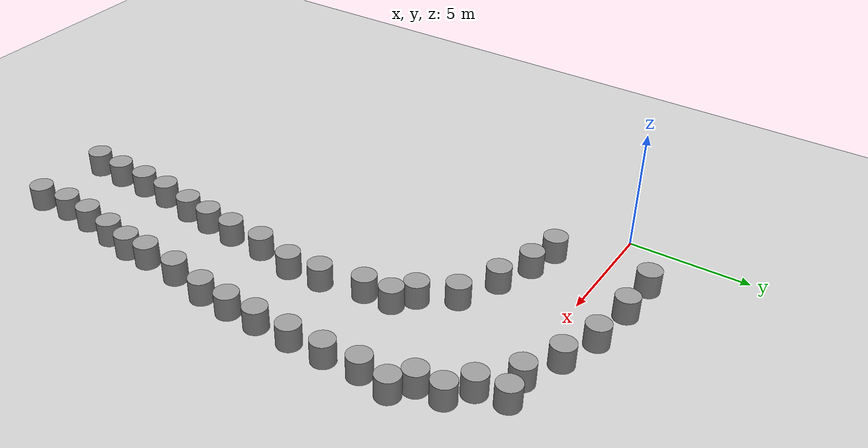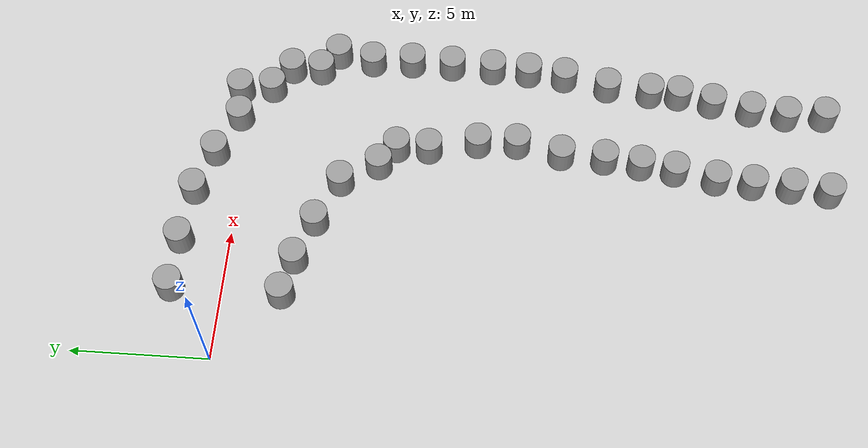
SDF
<sdf version="1.6">
 <world name="default">
  <light name="sun" type="directional">
   <pose>0 0 10 0 -0 0</pose>
   <diffuse>0.8 0.8 0.8 1</diffuse>
   <specular>0.1 0.1 0.1 1</specular>
   <attenuation>
    <range>1000</range>
    <constant>0.9</constant>
    <linear>0.01</linear>
    <quadratic>0.001</quadratic>
   </attenuation>
   <direction>-0.5 0.5 -1</direction>
  </light>
  <model name="ground_plane">
   <static>1</static>
   <link name="link">
    <collision name="collision">
     <geometry><plane><normal>0 0 1</normal><size>100 100</size></plane></geometry>
     <surface><friction><ode><mu>100</mu><mu2>50</mu2></ode></friction></surface>
    </collision>
    <visual name="visual">
     <cast_shadows>0</cast_shadows>
     <geometry><plane><normal>0 0 1</normal><size>100 100</size></plane></geometry>
     <material>
      <script><uri>file://media/materials/scripts/gazebo.material</uri><name>Gazebo/Grey</name></script>
     </material>
    </visual>
   </link>
  </model>
  <gravity>0 0 -9.8</gravity>
  <magnetic_field>6e-06 2.3e-05 -4.2e-05</magnetic_field>
  <atmosphere type="adiabatic"/>
  <physics name="default_physics" default="0" type="ode">
   <max_step_size>0.001</max_step_size>
   <real_time_factor>1</real_time_factor>
   <real_time_update_rate>1000</real_time_update_rate>
  </physics>
  <scene><ambient>0.4 0.4 0.4 1</ambient><background>0.7 0.7 0.7 1</background><shadows>1</shadows></scene>
  <spherical_coordinates>
   <surface_model>EARTH_WGS84</surface_model>
   <latitude_deg>0</latitude_deg>
   <longitude_deg>0</longitude_deg>
   <elevation>0</elevation>
   <heading_deg>0</heading_deg>
  </spherical_coordinates>
  <model name="unit_cylinder_0">
   <pose>2.57729 -2.17887 0.499998 3e-06 4e-06 -0</pose>
   <link name="link">
    <inertial>
     <mass>1</mass>
     <inertia><ixx>0.145833</ixx><ixy>0</ixy><ixz>0</ixz><iyy>0.145833</iyy><iyz>0</iyz><izz>0.125</izz></inertia>
    </inertial>
    <collision name="collision">
     <geometry><cylinder><radius>0.5</radius><length>1</length></cylinder></geometry>
    </collision>
    <visual name="visual">
     <geometry><cylinder><radius>0.5</radius><length>1</length></cylinder></geometry>
     <material>
      <script><name>Gazebo/Grey</name><uri>file://media/materials/scripts/gazebo.material</uri></script>
     </material>
    </visual>
   </link>
  </model>
  <model name="unit_cylinder_0_clone">
   <pose>2.61381 1.82032 0.499998 3e-06 4e-06 -0</pose>
   <link name="link">
    <inertial>
     <mass>1</mass>
     <inertia><ixx>0.145833</ixx><ixy>0</ixy><ixz>0</ixz><iyy>0.145833</iyy><iyz>0</iyz><izz>0.125</izz></inertia>
    </inertial>
    <collision name="collision">
     <geometry><cylinder><radius>0.5</radius><length>1</length></cylinder></geometry>
    </collision>
    <visual name="visual">
     <geometry><cylinder><radius>0.5</radius><length>1</length></cylinder></geometry>
     <material>
      <script><name>Gazebo/Grey</name><uri>file://media/materials/scripts/gazebo.material</uri></script>
     </material>
    </visual>
   </link>
  </model>
  <model name="unit_cylinder_0_clone_0">
   <pose>4.55328 1.78364 0.499994 -4e-06 -3e-06 -0</pose>
   <link name="link">
    <inertial>
     <mass>1</mass>
     <inertia><ixx>0.145833</ixx><ixy>0</ixy><ixz>0</ixz><iyy>0.145833</iyy><iyz>0</iyz><izz>0.125</izz></inertia>
    </inertial>
    <collision name="collision">
     <geometry><cylinder><radius>0.5</radius><length>1</length></cylinder></geometry>
    </collision>
    <visual name="visual">
     <geometry><cylinder><radius>0.5</radius><length>1</length></cylinder></geometry>
     <material>
      <script><name>Gazebo/Grey</name><uri>file://media/materials/scripts/gazebo.material</uri></script>
     </material>
    </visual>
   </link>
  </model>
  <model name="unit_cylinder_0_clone_1">
   <pose>6.62623 1.5799 0.499994 -4e-06 -3e-06 -0</pose>
   <link name="link">
    <inertial>
     <mass>1</mass>
     <inertia><ixx>0.145833</ixx><ixy>0</ixy><ixz>0</ixz><iyy>0.145833</iyy><iyz>0</iyz><izz>0.125</izz></inertia>
    </inertial>
    <collision name="collision">
     <geometry><cylinder><radius>0.5</radius><length>1</length></cylinder></geometry>
    </collision>
    <visual name="visual">
     <geometry><cylinder><radius>0.5</radius><length>1</length></cylinder></geometry>
     <material>
      <script><name>Gazebo/Grey</name><uri>file://media/materials/scripts/gazebo.material</uri></script>
     </material>
    </visual>
   </link>
  </model>
  <model name="unit_cylinder_0_clone_2">
   <pose>8.33448 1.03818 0.499994 -3e-06 -2e-06 0</pose>
   <link name="link">
    <inertial>
     <mass>1</mass>
     <inertia><ixx>0.145833</ixx><ixy>0</ixy><ixz>0</ixz><iyy>0.145833</iyy><iyz>0</iyz><izz>0.125</izz></inertia>
    </inertial>
    <collision name="collision">
     <geometry><cylinder><radius>0.5</radius><length>1</length></cylinder></geometry>
    </collision>
    <visual name="visual">
     <geometry><cylinder><radius>0.5</radius><length>1</length></cylinder></geometry>
     <material>
      <script><name>Gazebo/Grey</name><uri>file://media/materials/scripts/gazebo.material</uri></script>
     </material>
    </visual>
   </link>
  </model>
  <model name="unit_cylinder_0_clone_3">
   <pose>9.95937 0.326497 0.499994 -3e-06 -2e-06 0</pose>
   <link name="link">
    <inertial>
     <mass>1</mass>
     <inertia><ixx>0.145833</ixx><ixy>0</ixy><ixz>0</ixz><iyy>0.145833</iyy><iyz>0</iyz><izz>0.125</izz></inertia>
    </inertial>
    <collision name="collision">
     <geometry><cylinder><radius>0.5</radius><length>1</length></cylinder></geometry>
    </collision>
    <visual name="visual">
     <geometry><cylinder><radius>0.5</radius><length>1</length></cylinder></geometry>
     <material>
      <script><name>Gazebo/Grey</name><uri>file://media/materials/scripts/gazebo.material</uri></script>
     </material>
    </visual>
   </link>
  </model>
  <model name="unit_cylinder_0_clone_4">
   <pose>11.3463 -0.757905 0.499994 -3e-06 -2e-06 0</pose>
   <link name="link">
    <inertial>
     <mass>1</mass>
     <inertia><ixx>0.145833</ixx><ixy>0</ixy><ixz>0</ixz><iyy>0.145833</iyy><iyz>0</iyz><izz>0.125</izz></inertia>
    </inertial>
    <collision name="collision">
     <geometry><cylinder><radius>0.5</radius><length>1</length></cylinder></geometry>
    </collision>
    <visual name="visual">
     <geometry><cylinder><radius>0.5</radius><length>1</length></cylinder></geometry>
     <material>
      <script><name>Gazebo/Grey</name><uri>file://media/materials/scripts/gazebo.material</uri></script>
     </material>
    </visual>
   </link>
  </model>
  <model name="unit_cylinder_0_clone_5">
   <pose>12.2984 -2.55241 0.499994 -4e-06 2e-06 1.6e-05</pose>
   <link name="link">
    <inertial>
     <mass>1</mass>
     <inertia><ixx>0.145833</ixx><ixy>0</ixy><ixz>0</ixz><iyy>0.145833</iyy><iyz>0</iyz><izz>0.125</izz></inertia>
    </inertial>
    <collision name="collision">
     <geometry><cylinder><radius>0.5</radius><length>1</length></cylinder></geometry>
    </collision>
    <visual name="visual">
     <geometry><cylinder><radius>0.5</radius><length>1</length></cylinder></geometry>
     <material>
      <script><name>Gazebo/Grey</name><uri>file://media/materials/scripts/gazebo.material</uri></script>
     </material>
    </visual>
   </link>
  </model>
  <model name="unit_cylinder_0_clone_6">
   <pose>12.8171 -4.5227 0.499997 3e-06 2e-06 0</pose>
   <link name="link">
    <inertial>
     <mass>1</mass>
     <inertia><ixx>0.145833</ixx><ixy>0</ixy><ixz>0</ixz><iyy>0.145833</iyy><iyz>0</iyz><izz>0.125</izz></inertia>
    </inertial>
    <collision name="collision">
     <geometry><cylinder><radius>0.5</radius><length>1</length></cylinder></geometry>
    </collision>
    <visual name="visual">
     <geometry><cylinder><radius>0.5</radius><length>1</length></cylinder></geometry>
     <material>
      <script><name>Gazebo/Grey</name><uri>file://media/materials/scripts/gazebo.material</uri></script>
     </material>
    </visual>
   </link>
  </model>
  <model name="unit_cylinder_0_clone_7">
   <pose>3.99131 -2.47965 0.499997 0 -0 0</pose>
   <link name="link">
    <inertial>
     <mass>1</mass>
     <inertia><ixx>0.145833</ixx><ixy>0</ixy><ixz>0</ixz><iyy>0.145833</iyy><iyz>0</iyz><izz>0.125</izz></inertia>
    </inertial>
    <collision name="collision">
     <geometry><cylinder><radius>0.5</radius><length>1</length></cylinder></geometry>
    </collision>
    <visual name="visual">
     <geometry><cylinder><radius>0.5</radius><length>1</length></cylinder></geometry>
     <material>
      <script><name>Gazebo/Grey</name><uri>file://media/materials/scripts/gazebo.material</uri></script>
     </material>
    </visual>
   </link>
  </model>
  <model name="unit_cylinder_0_clone_8">
   <pose>5.58833 -3.0533 0.499992 -3e-06 2e-06 0</pose>
   <link name="link">
    <inertial>
     <mass>1</mass>
     <inertia><ixx>0.145833</ixx><ixy>0</ixy><ixz>0</ixz><iyy>0.145833</iyy><iyz>0</iyz><izz>0.125</izz></inertia>
    </inertial>
    <collision name="collision">
     <geometry><cylinder><radius>0.5</radius><length>1</length></cylinder></geometry>
    </collision>
    <visual name="visual">
     <geometry><cylinder><radius>0.5</radius><length>1</length></cylinder></geometry>
     <material>
      <script><name>Gazebo/Grey</name><uri>file://media/materials/scripts/gazebo.material</uri></script>
     </material>
    </visual>
   </link>
  </model>
  <model name="unit_cylinder_0_clone_9">
   <pose>7.32837 -3.81623 0.499992 -3e-06 2e-06 0</pose>
   <link name="link">
    <inertial>
     <mass>1</mass>
     <inertia><ixx>0.145833</ixx><ixy>0</ixy><ixz>0</ixz><iyy>0.145833</iyy><iyz>0</iyz><izz>0.125</izz></inertia>
    </inertial>
    <collision name="collision">
     <geometry><cylinder><radius>0.5</radius><length>1</length></cylinder></geometry>
    </collision>
    <visual name="visual">
     <geometry><cylinder><radius>0.5</radius><length>1</length></cylinder></geometry>
     <material>
      <script><name>Gazebo/Grey</name><uri>file://media/materials/scripts/gazebo.material</uri></script>
     </material>
    </visual>
   </link>
  </model>
  <model name="unit_cylinder_0_clone_10">
   <pose>8.14215 -5.17357 0.499995 -4e-06 -3e-06 -8e-06</pose>
   <link name="link">
    <inertial>
     <mass>1</mass>
     <inertia><ixx>0.145833</ixx><ixy>0</ixy><ixz>0</ixz><iyy>0.145833</iyy><iyz>0</iyz><izz>0.125</izz></inertia>
    </inertial>
    <collision name="collision">
     <geometry><cylinder><radius>0.5</radius><length>1</length></cylinder></geometry>
    </collision>
    <visual name="visual">
     <geometry><cylinder><radius>0.5</radius><length>1</length></cylinder></geometry>
     <material>
      <script><name>Gazebo/Grey</name><uri>file://media/materials/scripts/gazebo.material</uri></script>
     </material>
    </visual>
   </link>
  </model>
  <model name="unit_cylinder_0_clone_11">
   <pose>8.95477 -7.00392 0.499993 -3e-06 2e-06 0</pose>
   <link name="link">
    <inertial>
     <mass>1</mass>
     <inertia><ixx>0.145833</ixx><ixy>0</ixy><ixz>0</ixz><iyy>0.145833</iyy><iyz>0</iyz><izz>0.125</izz></inertia>
    </inertial>
    <collision name="collision">
     <geometry><cylinder><radius>0.5</radius><length>1</length></cylinder></geometry>
    </collision>
    <visual name="visual">
     <geometry><cylinder><radius>0.5</radius><length>1</length></cylinder></geometry>
     <material>
      <script><name>Gazebo/Grey</name><uri>file://media/materials/scripts/gazebo.material</uri></script>
     </material>
    </visual>
   </link>
  </model>
  <model name="unit_cylinder_0_clone_12">
   <pose>9.32149 -8.83107 0.499998 3e-06 -2e-06 0</pose>
   <link name="link">
    <inertial>
     <mass>1</mass>
     <inertia><ixx>0.145833</ixx><ixy>0</ixy><ixz>0</ixz><iyy>0.145833</iyy><iyz>0</iyz><izz>0.125</izz></inertia>
    </inertial>
    <collision name="collision">
     <geometry><cylinder><radius>0.5</radius><length>1</length></cylinder></geometry>
    </collision>
    <visual name="visual">
     <geometry><cylinder><radius>0.5</radius><length>1</length></cylinder></geometry>
     <material>
      <script><name>Gazebo/Grey</name><uri>file://media/materials/scripts/gazebo.material</uri></script>
     </material>
    </visual>
   </link>
  </model>
  <model name="unit_cylinder_1">
   <pose>12.8628 -6.06249 0.499993 -3e-06 2e-06 0</pose>
   <link name="link">
    <inertial>
     <mass>1</mass>
     <inertia><ixx>0.145833</ixx><ixy>0</ixy><ixz>0</ixz><iyy>0.145833</iyy><iyz>0</iyz><izz>0.125</izz></inertia>
    </inertial>
    <collision name="collision">
     <geometry><cylinder><radius>0.5</radius><length>1</length></cylinder></geometry>
    </collision>
    <visual name="visual">
     <geometry><cylinder><radius>0.5</radius><length>1</length></cylinder></geometry>
     <material>
      <script><name>Gazebo/Grey</name><uri>file://media/materials/scripts/gazebo.material</uri></script>
     </material>
    </visual>
   </link>
  </model>
  <model name="unit_cylinder_1_clone">
   <pose>12.821 -7.62925 0.499993 -3e-06 3e-06 0</pose>
   <link name="link">
    <inertial>
     <mass>1</mass>
     <inertia><ixx>0.145833</ixx><ixy>0</ixy><ixz>0</ixz><iyy>0.145833</iyy><iyz>0</iyz><izz>0.125</izz></inertia>
    </inertial>
    <collision name="collision">
     <geometry><cylinder><radius>0.5</radius><length>1</length></cylinder></geometry>
    </collision>
    <visual name="visual">
     <geometry><cylinder><radius>0.5</radius><length>1</length></cylinder></geometry>
     <material>
      <script><name>Gazebo/Grey</name><uri>file://media/materials/scripts/gazebo.material</uri></script>
     </material>
    </visual>
   </link>
  </model>
  <model name="unit_cylinder_1_clone_0">
   <pose>12.7499 -9.22066 0.499998 3e-06 -3e-06 0</pose>
   <link name="link">
    <inertial>
     <mass>1</mass>
     <inertia><ixx>0.145833</ixx><ixy>0</ixy><ixz>0</ixz><iyy>0.145833</iyy><iyz>0</iyz><izz>0.125</izz></inertia>
    </inertial>
    <collision name="collision">
     <geometry><cylinder><radius>0.5</radius><length>1</length></cylinder></geometry>
    </collision>
    <visual name="visual">
     <geometry><cylinder><radius>0.5</radius><length>1</length></cylinder></geometry>
     <material>
      <script><name>Gazebo/Grey</name><uri>file://media/materials/scripts/gazebo.material</uri></script>
     </material>
    </visual>
   </link>
  </model>
  <model name="unit_cylinder_1_clone_1">
   <pose>12.6945 -10.6222 0.499993 -3e-06 3e-06 0</pose>
   <link name="link">
    <inertial>
     <mass>1</mass>
     <inertia><ixx>0.145833</ixx><ixy>0</ixy><ixz>0</ixz><iyy>0.145833</iyy><iyz>0</iyz><izz>0.125</izz></inertia>
    </inertial>
    <collision name="collision">
     <geometry><cylinder><radius>0.5</radius><length>1</length></cylinder></geometry>
    </collision>
    <visual name="visual">
     <geometry><cylinder><radius>0.5</radius><length>1</length></cylinder></geometry>
     <material>
      <script><name>Gazebo/Grey</name><uri>file://media/materials/scripts/gazebo.material</uri></script>
     </material>
    </visual>
   </link>
  </model>
  <model name="unit_cylinder_1_clone_2">
   <pose>9.3851 -10.3159 0.499992 -3e-06 3e-06 0</pose>
   <link name="link">
    <inertial>
     <mass>1</mass>
     <inertia><ixx>0.145833</ixx><ixy>0</ixy><ixz>0</ixz><iyy>0.145833</iyy><iyz>0</iyz><izz>0.125</izz></inertia>
    </inertial>
    <collision name="collision">
     <geometry><cylinder><radius>0.5</radius><length>1</length></cylinder></geometry>
    </collision>
    <visual name="visual">
     <geometry><cylinder><radius>0.5</radius><length>1</length></cylinder></geometry>
     <material>
      <script><name>Gazebo/Grey</name><uri>file://media/materials/scripts/gazebo.material</uri></script>
     </material>
    </visual>
   </link>
  </model>
  <model name="unit_cylinder_1_clone_3">
   <pose>9 -12 0.499992 -3e-06 3e-06 0</pose>
   <link name="link">
    <inertial>
     <mass>1</mass>
     <inertia><ixx>0.145833</ixx><ixy>0</ixy><ixz>0</ixz><iyy>0.145833</iyy><iyz>0</iyz><izz>0.125</izz></inertia>
    </inertial>
    <collision name="collision">
     <geometry><cylinder><radius>0.5</radius><length>1</length></cylinder></geometry>
    </collision>
    <visual name="visual">
     <geometry><cylinder><radius>0.5</radius><length>1</length></cylinder></geometry>
     <material>
      <script><name>Gazebo/Grey</name><uri>file://media/materials/scripts/gazebo.material</uri></script>
     </material>
    </visual>
   </link>
  </model>
  <model name="unit_cylinder_1_clone_4">
   <pose>8.90502 -13.6344 0.499992 -3e-06 3e-06 0</pose>
   <link name="link">
    <inertial>
     <mass>1</mass>
     <inertia><ixx>0.145833</ixx><ixy>0</ixy><ixz>0</ixz><iyy>0.145833</iyy><iyz>0</iyz><izz>0.125</izz></inertia>
    </inertial>
    <collision name="collision">
     <geometry><cylinder><radius>0.5</radius><length>1</length></cylinder></geometry>
    </collision>
    <visual name="visual">
     <geometry><cylinder><radius>0.5</radius><length>1</length></cylinder></geometry>
     <material>
      <script><name>Gazebo/Grey</name><uri>file://media/materials/scripts/gazebo.material</uri></script>
     </material>
    </visual>
   </link>
  </model>
  <model name="unit_cylinder_1_clone_5">
   <pose>12.5593 -12.0237 0.499998 3e-06 -3e-06 0</pose>
   <link name="link">
    <inertial>
     <mass>1</mass>
     <inertia><ixx>0.145833</ixx><ixy>0</ixy><ixz>0</ixz><iyy>0.145833</iyy><iyz>0</iyz><izz>0.125</izz></inertia>
    </inertial>
    <collision name="collision">
     <geometry><cylinder><radius>0.5</radius><length>1</length></cylinder></geometry>
    </collision>
    <visual name="visual">
     <geometry><cylinder><radius>0.5</radius><length>1</length></cylinder></geometry>
     <material>
      <script><name>Gazebo/Grey</name><uri>file://media/materials/scripts/gazebo.material</uri></script>
     </material>
    </visual>
   </link>
  </model>
  <model name="unit_cylinder_1_clone_6">
   <pose>12.1911 -13.6998 0.499992 -3e-06 3e-06 0</pose>
   <link name="link">
    <inertial>
     <mass>1</mass>
     <inertia><ixx>0.145833</ixx><ixy>0</ixy><ixz>0</ixz><iyy>0.145833</iyy><iyz>0</iyz><izz>0.125</izz></inertia>
    </inertial>
    <collision name="collision">
     <geometry><cylinder><radius>0.5</radius><length>1</length></cylinder></geometry>
    </collision>
    <visual name="visual">
     <geometry><cylinder><radius>0.5</radius><length>1</length></cylinder></geometry>
     <material>
      <script><name>Gazebo/Grey</name><uri>file://media/materials/scripts/gazebo.material</uri></script>
     </material>
    </visual>
   </link>
  </model>
  <model name="unit_cylinder_1_clone_7">
   <pose>12.0367 -15.3474 0.499998 3e-06 -3e-06 0</pose>
   <link name="link">
    <inertial>
     <mass>1</mass>
     <inertia><ixx>0.145833</ixx><ixy>0</ixy><ixz>0</ixz><iyy>0.145833</iyy><iyz>0</iyz><izz>0.125</izz></inertia>
    </inertial>
    <collision name="collision">
     <geometry><cylinder><radius>0.5</radius><length>1</length></cylinder></geometry>
    </collision>
    <visual name="visual">
     <geometry><cylinder><radius>0.5</radius><length>1</length></cylinder></geometry>
     <material>
      <script><name>Gazebo/Grey</name><uri>file://media/materials/scripts/gazebo.material</uri></script>
     </material>
    </visual>
   </link>
  </model>
  <model name="unit_cylinder_1_clone_8">
   <pose>12 -16.4554 0.499998 3e-06 -3e-06 0</pose>
   <link name="link">
    <inertial>
     <mass>1</mass>
     <inertia><ixx>0.145833</ixx><ixy>0</ixy><ixz>0</ixz><iyy>0.145833</iyy><iyz>0</iyz><izz>0.125</izz></inertia>
    </inertial>
    <collision name="collision">
     <geometry><cylinder><radius>0.5</radius><length>1</length></cylinder></geometry>
    </collision>
    <visual name="visual">
     <geometry><cylinder><radius>0.5</radius><length>1</length></cylinder></geometry>
     <material>
      <script><name>Gazebo/Grey</name><uri>file://media/materials/scripts/gazebo.material</uri></script>
     </material>
    </visual>
   </link>
  </model>
  <model name="unit_cylinder_1_clone_9">
   <pose>11.719 -17.7307 0.499992 -3e-06 2e-06 0</pose>
   <link name="link">
    <inertial>
     <mass>1</mass>
     <inertia><ixx>0.145833</ixx><ixy>0</ixy><ixz>0</ixz><iyy>0.145833</iyy><iyz>0</iyz><izz>0.125</izz></inertia>
    </inertial>
    <collision name="collision">
     <geometry><cylinder><radius>0.5</radius><length>1</length></cylinder></geometry>
    </collision>
    <visual name="visual">
     <geometry><cylinder><radius>0.5</radius><length>1</length></cylinder></geometry>
     <material>
      <script><name>Gazebo/Grey</name><uri>file://media/materials/scripts/gazebo.material</uri></script>
     </material>
    </visual>
   </link>
  </model>
  <model name="unit_cylinder_1_clone_10">
   <pose>11.4452 -19.1997 0.499992 -3e-06 4e-06 0</pose>
   <link name="link">
    <inertial>
     <mass>1</mass>
     <inertia><ixx>0.145833</ixx><ixy>0</ixy><ixz>0</ixz><iyy>0.145833</iyy><iyz>0</iyz><izz>0.125</izz></inertia>
    </inertial>
    <collision name="collision">
     <geometry><cylinder><radius>0.5</radius><length>1</length></cylinder></geometry>
    </collision>
    <visual name="visual">
     <geometry><cylinder><radius>0.5</radius><length>1</length></cylinder></geometry>
     <material>
      <script><name>Gazebo/Grey</name><uri>file://media/materials/scripts/gazebo.material</uri></script>
     </material>
    </visual>
   </link>
  </model>
  <model name="unit_cylinder_1_clone_11">
   <pose>11.3132 -20.5552 0.499992 -3e-06 4e-06 0</pose>
   <link name="link">
    <inertial>
     <mass>1</mass>
     <inertia><ixx>0.145833</ixx><ixy>0</ixy><ixz>0</ixz><iyy>0.145833</iyy><iyz>0</iyz><izz>0.125</izz></inertia>
    </inertial>
    <collision name="collision">
     <geometry><cylinder><radius>0.5</radius><length>1</length></cylinder></geometry>
    </collision>
    <visual name="visual">
     <geometry><cylinder><radius>0.5</radius><length>1</length></cylinder></geometry>
     <material>
      <script><name>Gazebo/Grey</name><uri>file://media/materials/scripts/gazebo.material</uri></script>
     </material>
    </visual>
   </link>
  </model>
  <model name="unit_cylinder_1_clone_12">
   <pose>11.388 -22.0013 0.499998 3e-06 -4e-06 0</pose>
   <link name="link">
    <inertial>
     <mass>1</mass>
     <inertia><ixx>0.145833</ixx><ixy>0</ixy><ixz>0</ixz><iyy>0.145833</iyy><iyz>0</iyz><izz>0.125</izz></inertia>
    </inertial>
    <collision name="collision">
     <geometry><cylinder><radius>0.5</radius><length>1</length></cylinder></geometry>
    </collision>
    <visual name="visual">
     <geometry><cylinder><radius>0.5</radius><length>1</length></cylinder></geometry>
     <material>
      <script><name>Gazebo/Grey</name><uri>file://media/materials/scripts/gazebo.material</uri></script>
     </material>
    </visual>
   </link>
  </model>
  <model name="unit_cylinder_1_clone_13">
   <pose>8.74459 -14.9918 0.499998 3e-06 -4e-06 0</pose>
   <link name="link">
    <inertial>
     <mass>1</mass>
     <inertia><ixx>0.145833</ixx><ixy>0</ixy><ixz>0</ixz><iyy>0.145833</iyy><iyz>0</iyz><izz>0.125</izz></inertia>
    </inertial>
    <collision name="collision">
     <geometry><cylinder><radius>0.5</radius><length>1</length></cylinder></geometry>
    </collision>
    <visual name="visual">
     <geometry><cylinder><radius>0.5</radius><length>1</length></cylinder></geometry>
     <material>
      <script><name>Gazebo/Grey</name><uri>file://media/materials/scripts/gazebo.material</uri></script>
     </material>
    </visual>
   </link>
  </model>
  <model name="unit_cylinder_1_clone_14">
   <pose>8.56136 -16.2682 0.499998 3e-06 -4e-06 0</pose>
   <link name="link">
    <inertial>
     <mass>1</mass>
     <inertia><ixx>0.145833</ixx><ixy>0</ixy><ixz>0</ixz><iyy>0.145833</iyy><iyz>0</iyz><izz>0.125</izz></inertia>
    </inertial>
    <collision name="collision">
     <geometry><cylinder><radius>0.5</radius><length>1</length></cylinder></geometry>
    </collision>
    <visual name="visual">
     <geometry><cylinder><radius>0.5</radius><length>1</length></cylinder></geometry>
     <material>
      <script><name>Gazebo/Grey</name><uri>file://media/materials/scripts/gazebo.material</uri></script>
     </material>
    </visual>
   </link>
  </model>
  <model name="unit_cylinder_1_clone_15">
   <pose>8.27497 -17.7998 0.499998 3e-06 -4e-06 0</pose>
   <link name="link">
    <inertial>
     <mass>1</mass>
     <inertia><ixx>0.145833</ixx><ixy>0</ixy><ixz>0</ixz><iyy>0.145833</iyy><iyz>0</iyz><izz>0.125</izz></inertia>
    </inertial>
    <collision name="collision">
     <geometry><cylinder><radius>0.5</radius><length>1</length></cylinder></geometry>
    </collision>
    <visual name="visual">
     <geometry><cylinder><radius>0.5</radius><length>1</length></cylinder></geometry>
     <material>
      <script><name>Gazebo/Grey</name><uri>file://media/materials/scripts/gazebo.material</uri></script>
     </material>
    </visual>
   </link>
  </model>
  <model name="unit_cylinder_1_clone_16">
   <pose>8.16953 -19.1583 0.499992 -3e-06 -4e-06 -0</pose>
   <link name="link">
    <inertial>
     <mass>1</mass>
     <inertia><ixx>0.145833</ixx><ixy>0</ixy><ixz>0</ixz><iyy>0.145833</iyy><iyz>0</iyz><izz>0.125</izz></inertia>
    </inertial>
    <collision name="collision">
     <geometry><cylinder><radius>0.5</radius><length>1</length></cylinder></geometry>
    </collision>
    <visual name="visual">
     <geometry><cylinder><radius>0.5</radius><length>1</length></cylinder></geometry>
     <material>
      <script><name>Gazebo/Grey</name><uri>file://media/materials/scripts/gazebo.material</uri></script>
     </material>
    </visual>
   </link>
  </model>
  <model name="unit_cylinder_1_clone_17">
   <pose>8.1169 -20.5927 0.499992 -3e-06 -4e-06 -0</pose>
   <link name="link">
    <inertial>
     <mass>1</mass>
     <inertia><ixx>0.145833</ixx><ixy>0</ixy><ixz>0</ixz><iyy>0.145833</iyy><iyz>0</iyz><izz>0.125</izz></inertia>
    </inertial>
    <collision name="collision">
     <geometry><cylinder><radius>0.5</radius><length>1</length></cylinder></geometry>
    </collision>
    <visual name="visual">
     <geometry><cylinder><radius>0.5</radius><length>1</length></cylinder></geometry>
     <material>
      <script><name>Gazebo/Grey</name><uri>file://media/materials/scripts/gazebo.material</uri></script>
     </material>
    </visual>
   </link>
  </model>
  <model name="unit_cylinder_1_clone_18">
   <pose>8 -22 0.499997 3e-06 3e-06 0</pose>
   <link name="link">
    <inertial>
     <mass>1</mass>
     <inertia><ixx>0.145833</ixx><ixy>0</ixy><ixz>0</ixz><iyy>0.145833</iyy><iyz>0</iyz><izz>0.125</izz></inertia>
    </inertial>
    <collision name="collision">
     <geometry><cylinder><radius>0.5</radius><length>1</length></cylinder></geometry>
    </collision>
    <visual name="visual">
     <geometry><cylinder><radius>0.5</radius><length>1</length></cylinder></geometry>
     <material>
      <script><name>Gazebo/Grey</name><uri>file://media/materials/scripts/gazebo.material</uri></script>
     </material>
    </visual>
   </link>
  </model>
  <model name="unit_cylinder_1_clone_19">
   <pose>12.2925 -1.42233 0.499997 3e-06 4e-06 -0</pose>
   <link name="link">
    <inertial>
     <mass>1</mass>
     <inertia><ixx>0.145833</ixx><ixy>0</ixy><ixz>0</ixz><iyy>0.145833</iyy><iyz>0</iyz><izz>0.125</izz></inertia>
    </inertial>
    <collision name="collision">
     <geometry><cylinder><radius>0.5</radius><length>1</length></cylinder></geometry>
    </collision>
    <visual name="visual">
     <geometry><cylinder><radius>0.5</radius><length>1</length></cylinder></geometry>
     <material>
      <script><name>Gazebo/Grey</name><uri>file://media/materials/scripts/gazebo.material</uri></script>
     </material>
    </visual>
   </link>
  </model>
  <model name="unit_cylinder_1_clone_20">
   <pose>11.1969 0.466331 0.499993 -3e-06 -4e-06 -0</pose>
   <link name="link">
    <inertial>
     <mass>1</mass>
     <inertia><ixx>0.145833</ixx><ixy>0</ixy><ixz>0</ixz><iyy>0.145833</iyy><iyz>0</iyz><izz>0.125</izz></inertia>
    </inertial>
    <collision name="collision">
     <geometry><cylinder><radius>0.5</radius><length>1</length></cylinder></geometry>
    </collision>
    <visual name="visual">
     <geometry><cylinder><radius>0.5</radius><length>1</length></cylinder></geometry>
     <material>
      <script><name>Gazebo/Grey</name><uri>file://media/materials/scripts/gazebo.material</uri></script>
     </material>
    </visual>
   </link>
  </model>
  <model name="unit_cylinder_1_clone_21">
   <pose>13.094 -3.15823 0.5 0 -0 1.9e-05</pose>
   <link name="link">
    <inertial>
     <mass>1</mass>
     <inertia><ixx>0.145833</ixx><ixy>0</ixy><ixz>0</ixz><iyy>0.145833</iyy><iyz>0</iyz><izz>0.125</izz></inertia>
    </inertial>
    <collision name="collision">
     <geometry><cylinder><radius>0.5</radius><length>1</length></cylinder></geometry>
    </collision>
    <visual name="visual">
     <geometry><cylinder><radius>0.5</radius><length>1</length></cylinder></geometry>
     <material>
      <script><name>Gazebo/Grey</name><uri>file://media/materials/scripts/gazebo.material</uri></script>
     </material>
    </visual>
   </link>
  </model>
  <model name="unit_cylinder_1_clone_22">
   <pose>8.93746 -5.77978 0.499997 -4e-06 -3e-06 -8e-06</pose>
   <link name="link">
    <inertial>
     <mass>1</mass>
     <inertia><ixx>0.145833</ixx><ixy>0</ixy><ixz>0</ixz><iyy>0.145833</iyy><iyz>0</iyz><izz>0.125</izz></inertia>
    </inertial>
    <collision name="collision">
     <geometry><cylinder><radius>0.5</radius><length>1</length></cylinder></geometry>
    </collision>
    <visual name="visual">
     <geometry><cylinder><radius>0.5</radius><length>1</length></cylinder></geometry>
     <material>
      <script><name>Gazebo/Grey</name><uri>file://media/materials/scripts/gazebo.material</uri></script>
     </material>
    </visual>
   </link>
  </model>
 </world>
</sdf>
